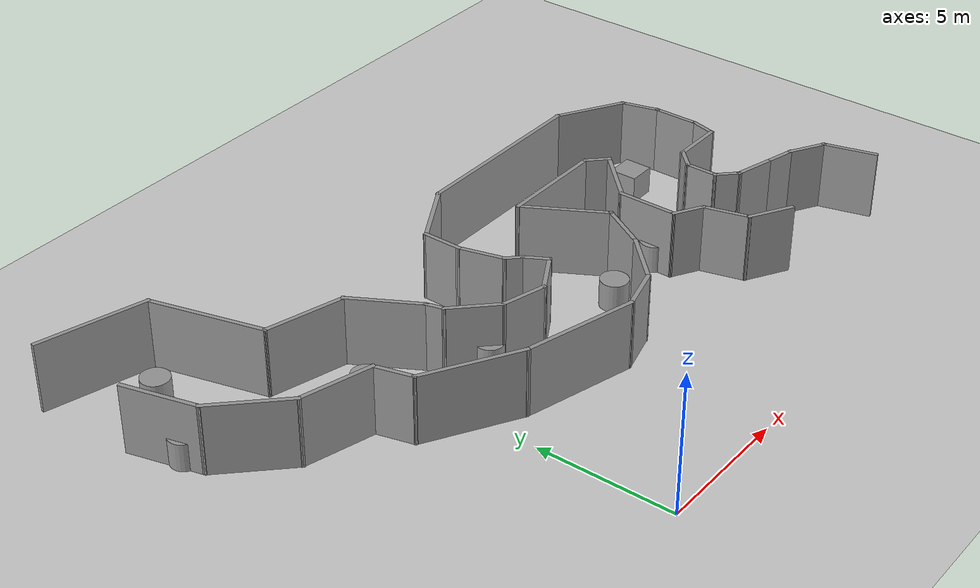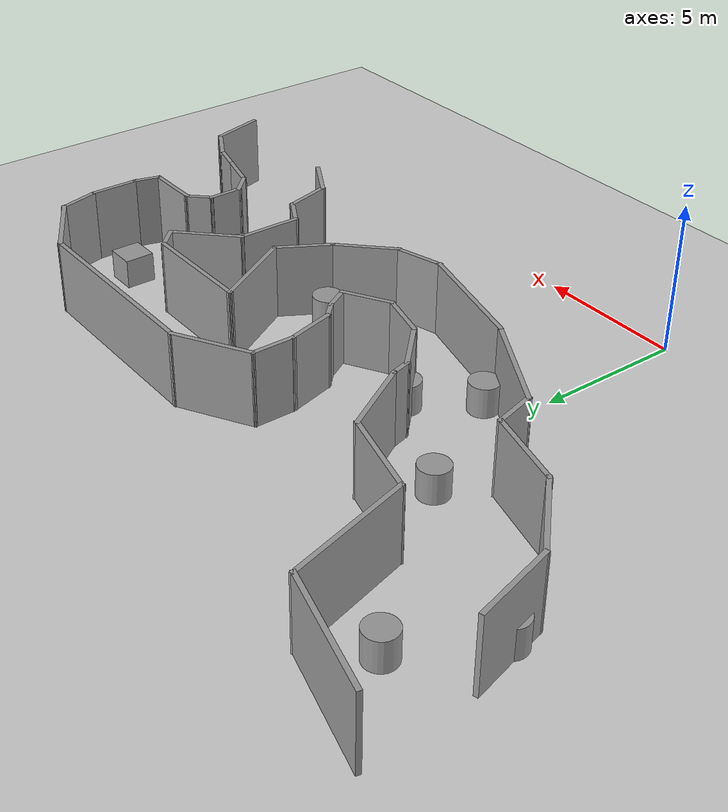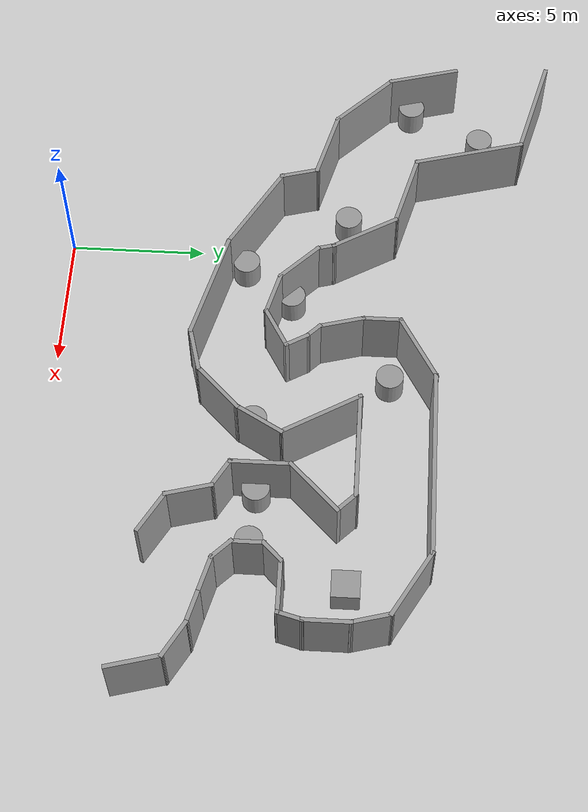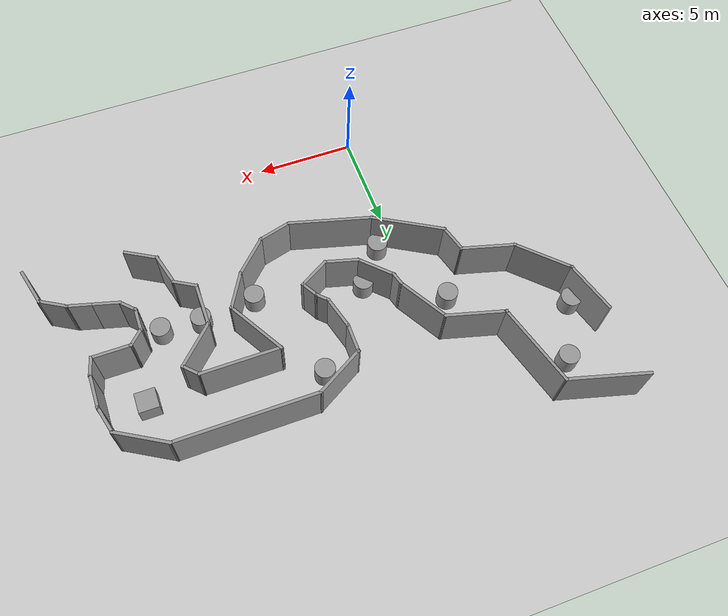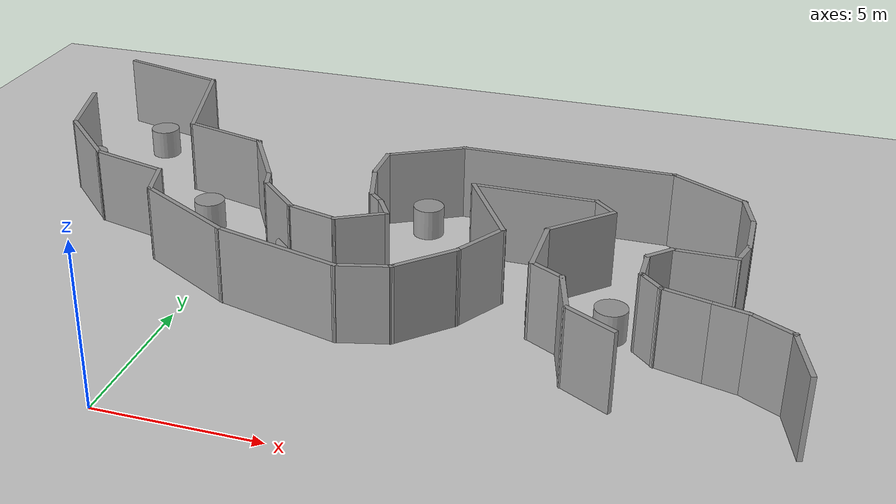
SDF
<sdf version="1.7">
 <world name="default">
  <model name="ground_plane">
   <static>1</static>
   <link name="link">
    <collision name="collision">
     <geometry><plane><normal>0 0 1</normal><size>100 100</size></plane></geometry>
     <surface><friction><ode><mu>100</mu><mu2>50</mu2></ode></friction></surface>
    </collision>
    <visual name="visual">
     <cast_shadows>0</cast_shadows>
     <geometry><plane><normal>0 0 1</normal><size>100 100</size></plane></geometry>
     <material>
      <script><uri>file://media/materials/scripts/gazebo.material</uri><name>Gazebo/Grey</name></script>
     </material>
    </visual>
   </link>
  </model>
  <model name="racetrackgap">
   <pose>0.224585 2.63558 0 0 -0 0</pose>
   <link name="Wall_100">
    <collision name="Wall_100_Collision">
     <geometry><box><size>2.75 0.15 2.5</size></box></geometry>
     <pose>0 0 1.25 0 -0 0</pose>
    </collision>
    <visual name="Wall_100_Visual">
     <pose>0 0 1.25 0 -0 0</pose>
     <geometry><box><size>2.75 0.15 2.5</size></box></geometry>
     <material>
      <script><uri>file://media/materials/scripts/gazebo.material</uri><name>Gazebo/Grey</name></script>
      <ambient>1 1 1 1</ambient>
     </material>
     <meta><layer>0</layer></meta>
    </visual>
    <pose>-3.86239 6.95839 0 0 -0 2.87979</pose>
   </link>
   <link name="Wall_101">
    <collision name="Wall_101_Collision">
     <geometry><box><size>3 0.15 2.5</size></box></geometry>
     <pose>0 0 1.25 0 -0 0</pose>
    </collision>
    <visual name="Wall_101_Visual">
     <pose>0 0 1.25 0 -0 0</pose>
     <geometry><box><size>3 0.15 2.5</size></box></geometry>
     <material>
      <script><uri>file://media/materials/scripts/gazebo.material</uri><name>Gazebo/Grey</name></script>
      <ambient>1 1 1 1</ambient>
     </material>
     <meta><layer>0</layer></meta>
    </visual>
    <pose>-6.12573 8.30248 0 0 -0 2.35619</pose>
   </link>
   <link name="Wall_102">
    <collision name="Wall_102_Collision">
     <geometry><box><size>2.75 0.15 2.5</size></box></geometry>
     <pose>0 0 1.25 0 -0 0</pose>
    </collision>
    <visual name="Wall_102_Visual">
     <pose>0 0 1.25 0 -0 0</pose>
     <geometry><box><size>2.75 0.15 2.5</size></box></geometry>
     <material>
      <script><uri>file://media/materials/scripts/gazebo.material</uri><name>Gazebo/Grey</name></script>
      <ambient>1 1 1 1</ambient>
     </material>
     <meta><layer>0</layer></meta>
    </visual>
    <pose>-7.46982 10.5658 0 0 -0 1.8326</pose>
   </link>
   <link name="Wall_20">
    <collision name="Wall_20_Collision">
     <geometry><box><size>2 0.15 2.5</size></box></geometry>
     <pose>0 0 1.25 0 -0 0</pose>
    </collision>
    <visual name="Wall_20_Visual">
     <pose>0 0 1.25 0 -0 0</pose>
     <geometry><box><size>2 0.15 2.5</size></box></geometry>
     <material>
      <script><uri>file://media/materials/scripts/gazebo.material</uri><name>Gazebo/Grey</name></script>
      <ambient>1 1 1 1</ambient>
     </material>
     <meta><layer>0</layer></meta>
    </visual>
    <pose>17.3909 1.74277 0 0 -0 1.8326</pose>
   </link>
   <link name="Wall_21">
    <collision name="Wall_21_Collision">
     <geometry><box><size>1.5 0.15 2.5</size></box></geometry>
     <pose>0 0 1.25 0 -0 0</pose>
    </collision>
    <visual name="Wall_21_Visual">
     <pose>0 0 1.25 0 -0 0</pose>
     <geometry><box><size>1.5 0.15 2.5</size></box></geometry>
     <material>
      <script><uri>file://media/materials/scripts/gazebo.material</uri><name>Gazebo/Grey</name></script>
      <ambient>1 1 1 1</ambient>
     </material>
     <meta><layer>0</layer></meta>
    </visual>
    <pose>16.5669 2.97375 0 0 -0 2.61799</pose>
   </link>
   <link name="Wall_22">
    <collision name="Wall_22_Collision">
     <geometry><box><size>1.25 0.15 2.5</size></box></geometry>
     <pose>0 0 1.25 0 -0 0</pose>
    </collision>
    <visual name="Wall_22_Visual">
     <pose>0 0 1.25 0 -0 0</pose>
     <geometry><box><size>1.25 0.15 2.5</size></box></geometry>
     <material>
      <script><uri>file://media/materials/scripts/gazebo.material</uri><name>Gazebo/Grey</name></script>
      <ambient>1 1 1 1</ambient>
     </material>
     <meta><layer>0</layer></meta>
    </visual>
    <pose>15.4511 3.4536 0 0 -0 2.87979</pose>
   </link>
   <link name="Wall_23">
    <collision name="Wall_23_Collision">
     <geometry><box><size>1.5 0.15 2.5</size></box></geometry>
     <pose>0 0 1.25 0 -0 0</pose>
    </collision>
    <visual name="Wall_23_Visual">
     <pose>0 0 1.25 0 -0 0</pose>
     <geometry><box><size>1.5 0.15 2.5</size></box></geometry>
     <material>
      <script><uri>file://media/materials/scripts/gazebo.material</uri><name>Gazebo/Grey</name></script>
      <ambient>1 1 1 1</ambient>
     </material>
     <meta><layer>0</layer></meta>
    </visual>
    <pose>14.2678 3.77066 0 0 -0 2.87979</pose>
   </link>
   <link name="Wall_24">
    <collision name="Wall_24_Collision">
     <geometry><box><size>1 0.15 2.5</size></box></geometry>
     <pose>0 0 1.25 0 -0 0</pose>
    </collision>
    <visual name="Wall_24_Visual">
     <pose>0 0 1.25 0 -0 0</pose>
     <geometry><box><size>1 0.15 2.5</size></box></geometry>
     <material>
      <script><uri>file://media/materials/scripts/gazebo.material</uri><name>Gazebo/Grey</name></script>
      <ambient>1 1 1 1</ambient>
     </material>
     <meta><layer>0</layer></meta>
    </visual>
    <pose>13.3153 4.24588 0 0 -0 2.35619</pose>
   </link>
   <link name="Wall_27">
    <collision name="Wall_27_Collision">
     <geometry><box><size>1.25 0.15 2.5</size></box></geometry>
     <pose>0 0 1.25 0 -0 0</pose>
    </collision>
    <visual name="Wall_27_Visual">
     <pose>0 0 1.25 0 -0 0</pose>
     <geometry><box><size>1.25 0.15 2.5</size></box></geometry>
     <material>
      <script><uri>file://media/materials/scripts/gazebo.material</uri><name>Gazebo/Grey</name></script>
      <ambient>1 1 1 1</ambient>
     </material>
     <meta><layer>0</layer></meta>
    </visual>
    <pose>13.0148 5.0964 0 0 -0 1.5708</pose>
   </link>
   <link name="Wall_28">
    <collision name="Wall_28_Collision">
     <geometry><box><size>1 0.15 2.5</size></box></geometry>
     <pose>0 0 1.25 0 -0 0</pose>
    </collision>
    <visual name="Wall_28_Visual">
     <pose>0 0 1.25 0 -0 0</pose>
     <geometry><box><size>1 0.15 2.5</size></box></geometry>
     <material>
      <script><uri>file://media/materials/scripts/gazebo.material</uri><name>Gazebo/Grey</name></script>
      <ambient>1 1 1 1</ambient>
     </material>
     <meta><layer>0</layer></meta>
    </visual>
    <pose>13.3153 5.94692 0 0 -0 0.785398</pose>
   </link>
   <link name="Wall_29">
    <collision name="Wall_29_Collision">
     <geometry><box><size>2 0.15 2.5</size></box></geometry>
     <pose>0 0 1.25 0 -0 0</pose>
    </collision>
    <visual name="Wall_29_Visual">
     <pose>0 0 1.25 0 -0 0</pose>
     <geometry><box><size>2 0.15 2.5</size></box></geometry>
     <material>
      <script><uri>file://media/materials/scripts/gazebo.material</uri><name>Gazebo/Grey</name></script>
      <ambient>1 1 1 1</ambient>
     </material>
     <meta><layer>0</layer></meta>
    </visual>
    <pose>14.5408 6.24744 0 0 -0 0</pose>
   </link>
   <link name="Wall_30">
    <collision name="Wall_30_Collision">
     <geometry><box><size>1 0.15 2.5</size></box></geometry>
     <pose>0 0 1.25 0 -0 0</pose>
    </collision>
    <visual name="Wall_30_Visual">
     <pose>0 0 1.25 0 -0 0</pose>
     <geometry><box><size>1 0.15 2.5</size></box></geometry>
     <material>
      <script><uri>file://media/materials/scripts/gazebo.material</uri><name>Gazebo/Grey</name></script>
      <ambient>1 1 1 1</ambient>
     </material>
     <meta><layer>0</layer></meta>
    </visual>
    <pose>15.5758 6.65796 0 0 -0 1.309</pose>
   </link>
   <link name="Wall_31">
    <collision name="Wall_31_Collision">
     <geometry><box><size>1.75 0.15 2.5</size></box></geometry>
     <pose>0 0 1.25 0 -0 0</pose>
    </collision>
    <visual name="Wall_31_Visual">
     <pose>0 0 1.25 0 -0 0</pose>
     <geometry><box><size>1.75 0.15 2.5</size></box></geometry>
     <material>
      <script><uri>file://media/materials/scripts/gazebo.material</uri><name>Gazebo/Grey</name></script>
      <ambient>1 1 1 1</ambient>
     </material>
     <meta><layer>0</layer></meta>
    </visual>
    <pose>15.6858 7.86848 0 0 -0 1.5708</pose>
   </link>
   <link name="Wall_32">
    <collision name="Wall_32_Collision">
     <geometry><box><size>1.5 0.15 2.5</size></box></geometry>
     <pose>0 0 1.25 0 -0 0</pose>
    </collision>
    <visual name="Wall_32_Visual">
     <pose>0 0 1.25 0 -0 0</pose>
     <geometry><box><size>1.5 0.15 2.5</size></box></geometry>
     <material>
      <script><uri>file://media/materials/scripts/gazebo.material</uri><name>Gazebo/Grey</name></script>
      <ambient>1 1 1 1</ambient>
     </material>
     <meta><layer>0</layer></meta>
    </visual>
    <pose>15.5111 9.32048 0 0 -0 1.8326</pose>
   </link>
   <link name="Wall_33">
    <collision name="Wall_33_Collision">
     <geometry><box><size>2.75 0.15 2.5</size></box></geometry>
     <pose>0 0 1.25 0 -0 0</pose>
    </collision>
    <visual name="Wall_33_Visual">
     <pose>0 0 1.25 0 -0 0</pose>
     <geometry><box><size>2.75 0.15 2.5</size></box></geometry>
     <material>
      <script><uri>file://media/materials/scripts/gazebo.material</uri><name>Gazebo/Grey</name></script>
      <ambient>1 1 1 1</ambient>
     </material>
     <meta><layer>0</layer></meta>
    </visual>
    <pose>14.2106 10.6225 0 0 -0 2.61799</pose>
   </link>
   <link name="Wall_34">
    <collision name="Wall_34_Collision">
     <geometry><box><size>7 0.15 2.5</size></box></geometry>
     <pose>0 0 1.25 0 -0 0</pose>
    </collision>
    <visual name="Wall_34_Visual">
     <pose>0 0 1.25 0 -0 0</pose>
     <geometry><box><size>7 0.15 2.5</size></box></geometry>
     <material>
      <script><uri>file://media/materials/scripts/gazebo.material</uri><name>Gazebo/Grey</name></script>
      <ambient>1 1 1 1</ambient>
     </material>
     <meta><layer>0</layer></meta>
    </visual>
    <pose>9.65973 11.2725 0 0 -0 3.14159</pose>
   </link>
   <link name="Wall_35">
    <collision name="Wall_35_Collision">
     <geometry><box><size>2.75 0.15 2.5</size></box></geometry>
     <pose>0 0 1.25 0 -0 0</pose>
    </collision>
    <visual name="Wall_35_Visual">
     <pose>0 0 1.25 0 -0 0</pose>
     <geometry><box><size>2.75 0.15 2.5</size></box></geometry>
     <material>
      <script><uri>file://media/materials/scripts/gazebo.material</uri><name>Gazebo/Grey</name></script>
      <ambient>1 1 1 1</ambient>
     </material>
     <meta><layer>0</layer></meta>
    </visual>
    <pose>5.10889 10.6225 0 0 -0 -2.61799</pose>
   </link>
   <link name="Wall_36">
    <collision name="Wall_36_Collision">
     <geometry><box><size>1.5 0.15 2.5</size></box></geometry>
     <pose>0 0 1.25 0 -0 0</pose>
    </collision>
    <visual name="Wall_36_Visual">
     <pose>0 0 1.25 0 -0 0</pose>
     <geometry><box><size>1.5 0.15 2.5</size></box></geometry>
     <material>
      <script><uri>file://media/materials/scripts/gazebo.material</uri><name>Gazebo/Grey</name></script>
      <ambient>1 1 1 1</ambient>
     </material>
     <meta><layer>0</layer></meta>
    </visual>
    <pose>3.98306 9.29748 0 0 -0 -1.5708</pose>
   </link>
   <link name="Wall_37">
    <collision name="Wall_37_Collision">
     <geometry><box><size>1.75 0.15 2.5</size></box></geometry>
     <pose>0 0 1.25 0 -0 0</pose>
    </collision>
    <visual name="Wall_37_Visual">
     <pose>0 0 1.25 0 -0 0</pose>
     <geometry><box><size>1.75 0.15 2.5</size></box></geometry>
     <material>
      <script><uri>file://media/materials/scripts/gazebo.material</uri><name>Gazebo/Grey</name></script>
      <ambient>1 1 1 1</ambient>
     </material>
     <meta><layer>0</layer></meta>
    </visual>
    <pose>4.19011 7.84974 0 0 -0 -1.309</pose>
   </link>
   <link name="Wall_38">
    <collision name="Wall_38_Collision">
     <geometry><box><size>0.75 0.15 2.5</size></box></geometry>
     <pose>0 0 1.25 0 -0 0</pose>
    </collision>
    <visual name="Wall_38_Visual">
     <pose>0 0 1.25 0 -0 0</pose>
     <geometry><box><size>0.75 0.15 2.5</size></box></geometry>
     <material>
      <script><uri>file://media/materials/scripts/gazebo.material</uri><name>Gazebo/Grey</name></script>
      <ambient>1 1 1 1</ambient>
     </material>
     <meta><layer>0</layer></meta>
    </visual>
    <pose>4.6093 6.86486 0 0 -0 -0.785398</pose>
   </link>
   <link name="Wall_39">
    <collision name="Wall_39_Collision">
     <geometry><box><size>1 0.15 2.5</size></box></geometry>
     <pose>0 0 1.25 0 -0 0</pose>
    </collision>
    <visual name="Wall_39_Visual">
     <pose>0 0 1.25 0 -0 0</pose>
     <geometry><box><size>1 0.15 2.5</size></box></geometry>
     <material>
      <script><uri>file://media/materials/scripts/gazebo.material</uri><name>Gazebo/Grey</name></script>
      <ambient>1 1 1 1</ambient>
     </material>
     <meta><layer>0</layer></meta>
    </visual>
    <pose>5.03393 6.28467 0 0 -0 -1.0472</pose>
   </link>
   <link name="Wall_40">
    <collision name="Wall_40_Collision">
     <geometry><box><size>1.75 0.15 2.5</size></box></geometry>
     <pose>0 0 1.25 0 -0 0</pose>
    </collision>
    <visual name="Wall_40_Visual">
     <pose>0 0 1.25 0 -0 0</pose>
     <geometry><box><size>1.75 0.15 2.5</size></box></geometry>
     <material>
      <script><uri>file://media/materials/scripts/gazebo.material</uri><name>Gazebo/Grey</name></script>
      <ambient>1 1 1 1</ambient>
     </material>
     <meta><layer>0</layer></meta>
    </visual>
    <pose>4.55361 5.51661 0 0 -0 -2.61799</pose>
   </link>
   <link name="Wall_41">
    <collision name="Wall_41_Collision">
     <geometry><box><size>1.75 0.15 2.5</size></box></geometry>
     <pose>0 0 1.25 0 -0 0</pose>
    </collision>
    <visual name="Wall_41_Visual">
     <pose>0 0 1.25 0 -0 0</pose>
     <geometry><box><size>1.75 0.15 2.5</size></box></geometry>
     <material>
      <script><uri>file://media/materials/scripts/gazebo.material</uri><name>Gazebo/Grey</name></script>
      <ambient>1 1 1 1</ambient>
     </material>
     <meta><layer>0</layer></meta>
    </visual>
    <pose>3.08805 5.32367 0 0 -0 2.87979</pose>
   </link>
   <link name="Wall_42">
    <collision name="Wall_42_Collision">
     <geometry><box><size>2 0.15 2.5</size></box></geometry>
     <pose>0 0 1.25 0 -0 0</pose>
    </collision>
    <visual name="Wall_42_Visual">
     <pose>0 0 1.25 0 -0 0</pose>
     <geometry><box><size>2 0.15 2.5</size></box></geometry>
     <material>
      <script><uri>file://media/materials/scripts/gazebo.material</uri><name>Gazebo/Grey</name></script>
      <ambient>1 1 1 1</ambient>
     </material>
     <meta><layer>0</layer></meta>
    </visual>
    <pose>1.66124 6.18479 0 0 -0 2.35619</pose>
   </link>
   <link name="Wall_43">
    <collision name="Wall_43_Collision">
     <geometry><box><size>0.75 0.15 2.5</size></box></geometry>
     <pose>0 0 1.25 0 -0 0</pose>
    </collision>
    <visual name="Wall_43_Visual">
     <pose>0 0 1.25 0 -0 0</pose>
     <geometry><box><size>0.75 0.15 2.5</size></box></geometry>
     <material>
      <script><uri>file://media/materials/scripts/gazebo.material</uri><name>Gazebo/Grey</name></script>
      <ambient>1 1 1 1</ambient>
     </material>
     <meta><layer>0</layer></meta>
    </visual>
    <pose>0.929519 7.12864 0 0 -0 1.8326</pose>
   </link>
   <link name="Wall_44">
    <collision name="Wall_44_Collision">
     <geometry><box><size>2.75 0.15 2.5</size></box></geometry>
     <pose>0 0 1.25 0 -0 0</pose>
    </collision>
    <visual name="Wall_44_Visual">
     <pose>0 0 1.25 0 -0 0</pose>
     <geometry><box><size>2.75 0.15 2.5</size></box></geometry>
     <material>
      <script><uri>file://media/materials/scripts/gazebo.material</uri><name>Gazebo/Grey</name></script>
      <ambient>1 1 1 1</ambient>
     </material>
     <meta><layer>0</layer></meta>
    </visual>
    <pose>0.201873 8.54426 0 0 -0 2.0944</pose>
   </link>
   <link name="Wall_45">
    <collision name="Wall_45_Collision">
     <geometry><box><size>3 0.15 2.5</size></box></geometry>
     <pose>0 0 1.25 0 -0 0</pose>
    </collision>
    <visual name="Wall_45_Visual">
     <pose>0 0 1.25 0 -0 0</pose>
     <geometry><box><size>3 0.15 2.5</size></box></geometry>
     <material>
      <script><uri>file://media/materials/scripts/gazebo.material</uri><name>Gazebo/Grey</name></script>
      <ambient>1 1 1 1</ambient>
     </material>
     <meta><layer>0</layer></meta>
    </visual>
    <pose>-1.82457 10.0389 0 0 -0 2.87979</pose>
   </link>
   <link name="Wall_46">
    <collision name="Wall_46_Collision">
     <geometry><box><size>4.25 0.15 2.5</size></box></geometry>
     <pose>0 0 1.25 0 -0 0</pose>
    </collision>
    <visual name="Wall_46_Visual">
     <pose>0 0 1.25 0 -0 0</pose>
     <geometry><box><size>4.25 0.15 2.5</size></box></geometry>
     <material>
      <script><uri>file://media/materials/scripts/gazebo.material</uri><name>Gazebo/Grey</name></script>
      <ambient>1 1 1 1</ambient>
     </material>
     <meta><layer>0</layer></meta>
    </visual>
    <pose>-3.73159 12.3879 0 0 -0 1.8326</pose>
   </link>
   <link name="Wall_47">
    <collision name="Wall_47_Collision">
     <geometry><box><size>4 0.15 2.5</size></box></geometry>
     <pose>0 0 1.25 0 -0 0</pose>
    </collision>
    <visual name="Wall_47_Visual">
     <pose>0 0 1.25 0 -0 0</pose>
     <geometry><box><size>4 0.15 2.5</size></box></geometry>
     <material>
      <script><uri>file://media/materials/scripts/gazebo.material</uri><name>Gazebo/Grey</name></script>
      <ambient>1 1 1 1</ambient>
     </material>
     <meta><layer>0</layer></meta>
    </visual>
    <pose>-6.12158 14.8662 0 0 -0 2.87979</pose>
   </link>
   <link name="Wall_86">
    <collision name="Wall_86_Collision">
     <geometry><box><size>1.75 0.15 2.5</size></box></geometry>
     <pose>0 0 1.25 0 -0 0</pose>
    </collision>
    <visual name="Wall_86_Visual">
     <pose>0 0 1.25 0 -0 0</pose>
     <geometry><box><size>1.75 0.15 2.5</size></box></geometry>
     <material>
      <script><uri>file://media/materials/scripts/gazebo.material</uri><name>Gazebo/Grey</name></script>
      <ambient>1 1 1 1</ambient>
     </material>
     <meta><layer>0</layer></meta>
    </visual>
    <pose>12.075 1.7844 0 0 -0 2.61799</pose>
   </link>
   <link name="Wall_87">
    <collision name="Wall_87_Collision">
     <geometry><box><size>1.75 0.15 2.5</size></box></geometry>
     <pose>0 0 1.25 0 -0 0</pose>
    </collision>
    <visual name="Wall_87_Visual">
     <pose>0 0 1.25 0 -0 0</pose>
     <geometry><box><size>1.75 0.15 2.5</size></box></geometry>
     <material>
      <script><uri>file://media/materials/scripts/gazebo.material</uri><name>Gazebo/Grey</name></script>
      <ambient>1 1 1 1</ambient>
     </material>
     <meta><layer>0</layer></meta>
    </visual>
    <pose>11.1751 2.95714 0 0 -0 1.8326</pose>
   </link>
   <link name="Wall_88">
    <collision name="Wall_88_Collision">
     <geometry><box><size>1.25 0.15 2.5</size></box></geometry>
     <pose>0 0 1.25 0 -0 0</pose>
    </collision>
    <visual name="Wall_88_Visual">
     <pose>0 0 1.25 0 -0 0</pose>
     <geometry><box><size>1.25 0.15 2.5</size></box></geometry>
     <material>
      <script><uri>file://media/materials/scripts/gazebo.material</uri><name>Gazebo/Grey</name></script>
      <ambient>1 1 1 1</ambient>
     </material>
     <meta><layer>0</layer></meta>
    </visual>
    <pose>10.4918 4.00488 0 0 -0 2.61799</pose>
   </link>
   <link name="Wall_89">
    <collision name="Wall_89_Collision">
     <geometry><box><size>2.25 0.15 2.5</size></box></geometry>
     <pose>0 0 1.25 0 -0 0</pose>
    </collision>
    <visual name="Wall_89_Visual">
     <pose>0 0 1.25 0 -0 0</pose>
     <geometry><box><size>2.25 0.15 2.5</size></box></geometry>
     <material>
      <script><uri>file://media/materials/scripts/gazebo.material</uri><name>Gazebo/Grey</name></script>
      <ambient>1 1 1 1</ambient>
     </material>
     <meta><layer>0</layer></meta>
    </visual>
    <pose>10.0154 5.32988 0 0 -0 1.5708</pose>
   </link>
   <link name="Wall_90">
    <collision name="Wall_90_Collision">
     <geometry><box><size>2.5 0.15 2.5</size></box></geometry>
     <pose>0 0 1.25 0 -0 0</pose>
    </collision>
    <visual name="Wall_90_Visual">
     <pose>0 0 1.25 0 -0 0</pose>
     <geometry><box><size>2.5 0.15 2.5</size></box></geometry>
     <material>
      <script><uri>file://media/materials/scripts/gazebo.material</uri><name>Gazebo/Grey</name></script>
      <ambient>1 1 1 1</ambient>
     </material>
     <meta><layer>0</layer></meta>
    </visual>
    <pose>10.8463 7.21073 0 0 -0 0.785398</pose>
   </link>
   <link name="Wall_91">
    <collision name="Wall_91_Collision">
     <geometry><box><size>1 0.15 2.5</size></box></geometry>
     <pose>0 0 1.25 0 -0 0</pose>
    </collision>
    <visual name="Wall_91_Visual">
     <pose>0 0 1.25 0 -0 0</pose>
     <geometry><box><size>1 0.15 2.5</size></box></geometry>
     <material>
      <script><uri>file://media/materials/scripts/gazebo.material</uri><name>Gazebo/Grey</name></script>
      <ambient>1 1 1 1</ambient>
     </material>
     <meta><layer>0</layer></meta>
    </visual>
    <pose>11.3766 8.34211 0 0 -0 2.35619</pose>
   </link>
   <link name="Wall_92">
    <collision name="Wall_92_Collision">
     <geometry><box><size>4 0.15 2.5</size></box></geometry>
     <pose>0 0 1.25 0 -0 0</pose>
    </collision>
    <visual name="Wall_92_Visual">
     <pose>0 0 1.25 0 -0 0</pose>
     <geometry><box><size>4 0.15 2.5</size></box></geometry>
     <material>
      <script><uri>file://media/materials/scripts/gazebo.material</uri><name>Gazebo/Grey</name></script>
      <ambient>1 1 1 1</ambient>
     </material>
     <meta><layer>0</layer></meta>
    </visual>
    <pose>9.15111 8.64263 0 0 -0 3.14159</pose>
   </link>
   <link name="Wall_93">
    <collision name="Wall_93_Collision">
     <geometry><box><size>3.25 0.15 2.5</size></box></geometry>
     <pose>0 0 1.25 0 -0 0</pose>
    </collision>
    <visual name="Wall_93_Visual">
     <pose>0 0 1.25 0 -0 0</pose>
     <geometry><box><size>3.25 0.15 2.5</size></box></geometry>
     <material>
      <script><uri>file://media/materials/scripts/gazebo.material</uri><name>Gazebo/Grey</name></script>
      <ambient>1 1 1 1</ambient>
     </material>
     <meta><layer>0</layer></meta>
    </visual>
    <pose>8.00111 7.30029 0 0 -0 -1.0472</pose>
   </link>
   <link name="Wall_94">
    <collision name="Wall_94_Collision">
     <geometry><box><size>2 0.15 2.5</size></box></geometry>
     <pose>0 0 1.25 0 -0 0</pose>
    </collision>
    <visual name="Wall_94_Visual">
     <pose>0 0 1.25 0 -0 0</pose>
     <geometry><box><size>2 0.15 2.5</size></box></geometry>
     <material>
      <script><uri>file://media/materials/scripts/gazebo.material</uri><name>Gazebo/Grey</name></script>
      <ambient>1 1 1 1</ambient>
     </material>
     <meta><layer>0</layer></meta>
    </visual>
    <pose>8.31361 5.15687 0 0 -0 -2.0944</pose>
   </link>
   <link name="Wall_95">
    <collision name="Wall_95_Collision">
     <geometry><box><size>2.25 0.15 2.5</size></box></geometry>
     <pose>0 0 1.25 0 -0 0</pose>
    </collision>
    <visual name="Wall_95_Visual">
     <pose>0 0 1.25 0 -0 0</pose>
     <geometry><box><size>2.25 0.15 2.5</size></box></geometry>
     <material>
      <script><uri>file://media/materials/scripts/gazebo.material</uri><name>Gazebo/Grey</name></script>
      <ambient>1 1 1 1</ambient>
     </material>
     <meta><layer>0</layer></meta>
    </visual>
    <pose>7.10865 3.61334 0 0 -0 -2.35619</pose>
   </link>
   <link name="Wall_96">
    <collision name="Wall_96_Collision">
     <geometry><box><size>1.75 0.15 2.5</size></box></geometry>
     <pose>0 0 1.25 0 -0 0</pose>
    </collision>
    <visual name="Wall_96_Visual">
     <pose>0 0 1.25 0 -0 0</pose>
     <geometry><box><size>1.75 0.15 2.5</size></box></geometry>
     <material>
      <script><uri>file://media/materials/scripts/gazebo.material</uri><name>Gazebo/Grey</name></script>
      <ambient>1 1 1 1</ambient>
     </material>
     <meta><layer>0</layer></meta>
    </visual>
    <pose>5.59344 2.66382 0 0 -0 -2.87979</pose>
   </link>
   <link name="Wall_97">
    <collision name="Wall_97_Collision">
     <geometry><box><size>4.25 0.15 2.5</size></box></geometry>
     <pose>0 0 1.25 0 -0 0</pose>
    </collision>
    <visual name="Wall_97_Visual">
     <pose>0 0 1.25 0 -0 0</pose>
     <geometry><box><size>4.25 0.15 2.5</size></box></geometry>
     <material>
      <script><uri>file://media/materials/scripts/gazebo.material</uri><name>Gazebo/Grey</name></script>
      <ambient>1 1 1 1</ambient>
     </material>
     <meta><layer>0</layer></meta>
    </visual>
    <pose>2.84055 2.98734 0 0 -0 2.87979</pose>
   </link>
   <link name="Wall_98">
    <collision name="Wall_98_Collision">
     <geometry><box><size>3.75 0.15 2.5</size></box></geometry>
     <pose>0 0 1.25 0 -0 0</pose>
    </collision>
    <visual name="Wall_98_Visual">
     <pose>0 0 1.25 0 -0 0</pose>
     <geometry><box><size>3.75 0.15 2.5</size></box></geometry>
     <material>
      <script><uri>file://media/materials/scripts/gazebo.material</uri><name>Gazebo/Grey</name></script>
      <ambient>1 1 1 1</ambient>
     </material>
     <meta><layer>0</layer></meta>
    </visual>
    <pose>-0.698439 4.41792 0 0 -0 2.61799</pose>
   </link>
   <link name="Wall_99">
    <collision name="Wall_99_Collision">
     <geometry><box><size>1.5 0.15 2.5</size></box></geometry>
     <pose>0 0 1.25 0 -0 0</pose>
    </collision>
    <visual name="Wall_99_Visual">
     <pose>0 0 1.25 0 -0 0</pose>
     <geometry><box><size>1.5 0.15 2.5</size></box></geometry>
     <material>
      <script><uri>file://media/materials/scripts/gazebo.material</uri><name>Gazebo/Grey</name></script>
      <ambient>1 1 1 1</ambient>
     </material>
     <meta><layer>0</layer></meta>
    </visual>
    <pose>-2.43199 5.96992 0 0 -0 1.8326</pose>
   </link>
   <static>1</static>
  </model>
  <model name="objetracetrack">
   <link name="link_10">
    <inertial>
     <mass>1</mass>
     <inertia><ixx>0.145833</ixx><ixy>0</ixy><ixz>0</ixz><iyy>0.145833</iyy><iyz>0</iyz><izz>0.125</izz></inertia>
    </inertial>
    <pose>14.1744 5.54812 0 0 -0 0</pose>
    <visual name="visual">
     <geometry><cylinder><radius>0.5</radius><length>1</length></cylinder></geometry>
     <material>
      <lighting>1</lighting>
      <script><uri>file://media/materials/scripts/gazebo.material</uri><name>Gazebo/Grey</name></script>
      <shader type="pixel"/>
     </material>
    </visual>
    <collision name="collision">
     <geometry><cylinder><radius>0.5</radius><length>1</length></cylinder></geometry>
     <surface>
      <friction>
       <ode><mu>1</mu><mu2>1</mu2><fdir1>0 0 0</fdir1><slip1>0</slip1><slip2>0</slip2></ode>
       <torsional>
        <coefficient>1</coefficient>
        <patch_radius>0</patch_radius>
        <surface_radius>0</surface_radius>
        <use_patch_radius>1</use_patch_radius>
        <ode><slip>0</slip></ode>
       </torsional>
      </friction>
      <bounce><restitution_coefficient>0</restitution_coefficient><threshold>1e+06</threshold></bounce>
      <contact>
       <collide_without_contact>0</collide_without_contact>
       <collide_without_contact_bitmask>1</collide_without_contact_bitmask>
       <collide_bitmask>1</collide_bitmask>
       <ode>
        <soft_cfm>0</soft_cfm>
        <soft_erp>0.2</soft_erp>
        <kp>1e+13</kp>
        <kd>1</kd>
        <max_vel>0.01</max_vel>
        <min_depth>0</min_depth>
       </ode>
       <bullet>
        <split_impulse>1</split_impulse>
        <split_impulse_penetration_threshold>-0.01</split_impulse_penetration_threshold>
        <soft_cfm>0</soft_cfm>
        <soft_erp>0.2</soft_erp>
        <kp>1e+13</kp>
        <kd>1</kd>
       </bullet>
      </contact>
     </surface>
    </collision>
   </link>
   <link name="link_11">
    <inertial>
     <mass>1</mass>
     <inertia>
      <ixx>0.166667</ixx>
      <ixy>0</ixy>
      <ixz>0</ixz>
      <iyy>0.166667</iyy>
      <iyz>0</iyz>
      <izz>0.166667</izz>
     </inertia>
    </inertial>
    <pose>15.6652 8.94561 0 0 -0 0</pose>
    <visual name="visual">
     <geometry><box><size>1 1 1</size></box></geometry>
     <material>
      <lighting>1</lighting>
      <script><uri>file://media/materials/scripts/gazebo.material</uri><name>Gazebo/Grey</name></script>
      <shader type="pixel"/>
     </material>
    </visual>
    <collision name="collision">
     <geometry><box><size>1 1 1</size></box></geometry>
     <surface>
      <friction>
       <ode><mu>1</mu><mu2>1</mu2><fdir1>0 0 0</fdir1><slip1>0</slip1><slip2>0</slip2></ode>
       <torsional>
        <coefficient>1</coefficient>
        <patch_radius>0</patch_radius>
        <surface_radius>0</surface_radius>
        <use_patch_radius>1</use_patch_radius>
        <ode><slip>0</slip></ode>
       </torsional>
      </friction>
      <bounce><restitution_coefficient>0</restitution_coefficient><threshold>1e+06</threshold></bounce>
      <contact>
       <collide_without_contact>0</collide_without_contact>
       <collide_without_contact_bitmask>1</collide_without_contact_bitmask>
       <collide_bitmask>1</collide_bitmask>
       <ode>
        <soft_cfm>0</soft_cfm>
        <soft_erp>0.2</soft_erp>
        <kp>1e+13</kp>
        <kd>1</kd>
        <max_vel>0.01</max_vel>
        <min_depth>0</min_depth>
       </ode>
       <bullet>
        <split_impulse>1</split_impulse>
        <split_impulse_penetration_threshold>-0.01</split_impulse_penetration_threshold>
        <soft_cfm>0</soft_cfm>
        <soft_erp>0.2</soft_erp>
        <kp>1e+13</kp>
        <kd>1</kd>
       </bullet>
      </contact>
     </surface>
    </collision>
   </link>
   <link name="link_12">
    <inertial>
     <mass>1</mass>
     <inertia><ixx>0.145833</ixx><ixy>0</ixy><ixz>0</ixz><iyy>0.145833</iyy><iyz>0</iyz><izz>0.125</izz></inertia>
    </inertial>
    <pose>7.44329 10.1909 0 0 -0 0</pose>
    <visual name="visual">
     <geometry><cylinder><radius>0.5</radius><length>1</length></cylinder></geometry>
     <material>
      <lighting>1</lighting>
      <script><uri>file://media/materials/scripts/gazebo.material</uri><name>Gazebo/Grey</name></script>
      <shader type="pixel"/>
     </material>
    </visual>
    <collision name="collision">
     <geometry><cylinder><radius>0.5</radius><length>1</length></cylinder></geometry>
     <surface>
      <friction>
       <ode><mu>1</mu><mu2>1</mu2><fdir1>0 0 0</fdir1><slip1>0</slip1><slip2>0</slip2></ode>
       <torsional>
        <coefficient>1</coefficient>
        <patch_radius>0</patch_radius>
        <surface_radius>0</surface_radius>
        <use_patch_radius>1</use_patch_radius>
        <ode><slip>0</slip></ode>
       </torsional>
      </friction>
      <bounce><restitution_coefficient>0</restitution_coefficient><threshold>1e+06</threshold></bounce>
      <contact>
       <collide_without_contact>0</collide_without_contact>
       <collide_without_contact_bitmask>1</collide_without_contact_bitmask>
       <collide_bitmask>1</collide_bitmask>
       <ode>
        <soft_cfm>0</soft_cfm>
        <soft_erp>0.2</soft_erp>
        <kp>1e+13</kp>
        <kd>1</kd>
        <max_vel>0.01</max_vel>
        <min_depth>0</min_depth>
       </ode>
       <bullet>
        <split_impulse>1</split_impulse>
        <split_impulse_penetration_threshold>-0.01</split_impulse_penetration_threshold>
        <soft_cfm>0</soft_cfm>
        <soft_erp>0.2</soft_erp>
        <kp>1e+13</kp>
        <kd>1</kd>
       </bullet>
      </contact>
     </surface>
    </collision>
   </link>
   <link name="link_13">
    <inertial>
     <mass>1</mass>
     <inertia><ixx>0.145833</ixx><ixy>0</ixy><ixz>0</ixz><iyy>0.145833</iyy><iyz>0</iyz><izz>0.125</izz></inertia>
    </inertial>
    <pose>9.41915 5.35781 0 0 -0 0</pose>
    <visual name="visual">
     <geometry><cylinder><radius>0.5</radius><length>1</length></cylinder></geometry>
     <material>
      <lighting>1</lighting>
      <script><uri>file://media/materials/scripts/gazebo.material</uri><name>Gazebo/Grey</name></script>
      <shader type="pixel"/>
     </material>
    </visual>
    <collision name="collision">
     <geometry><cylinder><radius>0.5</radius><length>1</length></cylinder></geometry>
     <surface>
      <friction>
       <ode><mu>1</mu><mu2>1</mu2><fdir1>0 0 0</fdir1><slip1>0</slip1><slip2>0</slip2></ode>
       <torsional>
        <coefficient>1</coefficient>
        <patch_radius>0</patch_radius>
        <surface_radius>0</surface_radius>
        <use_patch_radius>1</use_patch_radius>
        <ode><slip>0</slip></ode>
       </torsional>
      </friction>
      <bounce><restitution_coefficient>0</restitution_coefficient><threshold>1e+06</threshold></bounce>
      <contact>
       <collide_without_contact>0</collide_without_contact>
       <collide_without_contact_bitmask>1</collide_without_contact_bitmask>
       <collide_bitmask>1</collide_bitmask>
       <ode>
        <soft_cfm>0</soft_cfm>
        <soft_erp>0.2</soft_erp>
        <kp>1e+13</kp>
        <kd>1</kd>
        <max_vel>0.01</max_vel>
        <min_depth>0</min_depth>
       </ode>
       <bullet>
        <split_impulse>1</split_impulse>
        <split_impulse_penetration_threshold>-0.01</split_impulse_penetration_threshold>
        <soft_cfm>0</soft_cfm>
        <soft_erp>0.2</soft_erp>
        <kp>1e+13</kp>
        <kd>1</kd>
       </bullet>
      </contact>
     </surface>
    </collision>
   </link>
   <link name="link_14">
    <inertial>
     <mass>1</mass>
     <inertia><ixx>0.145833</ixx><ixy>0</ixy><ixz>0</ixz><iyy>0.145833</iyy><iyz>0</iyz><izz>0.125</izz></inertia>
    </inertial>
    <pose>4.1131 6.43948 0 0 -0 0</pose>
    <visual name="visual">
     <geometry><cylinder><radius>0.5</radius><length>1</length></cylinder></geometry>
     <material>
      <lighting>1</lighting>
      <script><uri>file://media/materials/scripts/gazebo.material</uri><name>Gazebo/Grey</name></script>
      <shader type="pixel"/>
     </material>
    </visual>
    <collision name="collision">
     <geometry><cylinder><radius>0.5</radius><length>1</length></cylinder></geometry>
     <surface>
      <friction>
       <ode><mu>1</mu><mu2>1</mu2><fdir1>0 0 0</fdir1><slip1>0</slip1><slip2>0</slip2></ode>
       <torsional>
        <coefficient>1</coefficient>
        <patch_radius>0</patch_radius>
        <surface_radius>0</surface_radius>
        <use_patch_radius>1</use_patch_radius>
        <ode><slip>0</slip></ode>
       </torsional>
      </friction>
      <bounce><restitution_coefficient>0</restitution_coefficient><threshold>1e+06</threshold></bounce>
      <contact>
       <collide_without_contact>0</collide_without_contact>
       <collide_without_contact_bitmask>1</collide_without_contact_bitmask>
       <collide_bitmask>1</collide_bitmask>
       <ode>
        <soft_cfm>0</soft_cfm>
        <soft_erp>0.2</soft_erp>
        <kp>1e+13</kp>
        <kd>1</kd>
        <max_vel>0.01</max_vel>
        <min_depth>0</min_depth>
       </ode>
       <bullet>
        <split_impulse>1</split_impulse>
        <split_impulse_penetration_threshold>-0.01</split_impulse_penetration_threshold>
        <soft_cfm>0</soft_cfm>
        <soft_erp>0.2</soft_erp>
        <kp>1e+13</kp>
        <kd>1</kd>
       </bullet>
      </contact>
     </surface>
    </collision>
   </link>
   <link name="link_15">
    <inertial>
     <mass>1</mass>
     <inertia><ixx>0.145833</ixx><ixy>0</ixy><ixz>0</ixz><iyy>0.145833</iyy><iyz>0</iyz><izz>0.125</izz></inertia>
    </inertial>
    <pose>2.67704 4.64369 0 0 -0 0</pose>
    <visual name="visual">
     <geometry><cylinder><radius>0.5</radius><length>1</length></cylinder></geometry>
     <material>
      <lighting>1</lighting>
      <script><uri>file://media/materials/scripts/gazebo.material</uri><name>Gazebo/Grey</name></script>
      <shader type="pixel"/>
     </material>
    </visual>
    <collision name="collision">
     <geometry><cylinder><radius>0.5</radius><length>1</length></cylinder></geometry>
     <surface>
      <friction>
       <ode><mu>1</mu><mu2>1</mu2><fdir1>0 0 0</fdir1><slip1>0</slip1><slip2>0</slip2></ode>
       <torsional>
        <coefficient>1</coefficient>
        <patch_radius>0</patch_radius>
        <surface_radius>0</surface_radius>
        <use_patch_radius>1</use_patch_radius>
        <ode><slip>0</slip></ode>
       </torsional>
      </friction>
      <bounce><restitution_coefficient>0</restitution_coefficient><threshold>1e+06</threshold></bounce>
      <contact>
       <collide_without_contact>0</collide_without_contact>
       <collide_without_contact_bitmask>1</collide_without_contact_bitmask>
       <collide_bitmask>1</collide_bitmask>
       <ode>
        <soft_cfm>0</soft_cfm>
        <soft_erp>0.2</soft_erp>
        <kp>1e+13</kp>
        <kd>1</kd>
        <max_vel>0.01</max_vel>
        <min_depth>0</min_depth>
       </ode>
       <bullet>
        <split_impulse>1</split_impulse>
        <split_impulse_penetration_threshold>-0.01</split_impulse_penetration_threshold>
        <soft_cfm>0</soft_cfm>
        <soft_erp>0.2</soft_erp>
        <kp>1e+13</kp>
        <kd>1</kd>
       </bullet>
      </contact>
     </surface>
    </collision>
   </link>
   <link name="link_16">
    <inertial>
     <mass>1</mass>
     <inertia><ixx>0.145833</ixx><ixy>0</ixy><ixz>0</ixz><iyy>0.145833</iyy><iyz>0</iyz><izz>0.125</izz></inertia>
    </inertial>
    <pose>0.43334 8.40793 0 0 -0 0</pose>
    <visual name="visual">
     <geometry><cylinder><radius>0.5</radius><length>1</length></cylinder></geometry>
     <material>
      <lighting>1</lighting>
      <script><uri>file://media/materials/scripts/gazebo.material</uri><name>Gazebo/Grey</name></script>
      <shader type="pixel"/>
     </material>
    </visual>
    <collision name="collision">
     <geometry><cylinder><radius>0.5</radius><length>1</length></cylinder></geometry>
     <surface>
      <friction>
       <ode><mu>1</mu><mu2>1</mu2><fdir1>0 0 0</fdir1><slip1>0</slip1><slip2>0</slip2></ode>
       <torsional>
        <coefficient>1</coefficient>
        <patch_radius>0</patch_radius>
        <surface_radius>0</surface_radius>
        <use_patch_radius>1</use_patch_radius>
        <ode><slip>0</slip></ode>
       </torsional>
      </friction>
      <bounce><restitution_coefficient>0</restitution_coefficient><threshold>1e+06</threshold></bounce>
      <contact>
       <collide_without_contact>0</collide_without_contact>
       <collide_without_contact_bitmask>1</collide_without_contact_bitmask>
       <collide_bitmask>1</collide_bitmask>
       <ode>
        <soft_cfm>0</soft_cfm>
        <soft_erp>0.2</soft_erp>
        <kp>1e+13</kp>
        <kd>1</kd>
        <max_vel>0.01</max_vel>
        <min_depth>0</min_depth>
       </ode>
       <bullet>
        <split_impulse>1</split_impulse>
        <split_impulse_penetration_threshold>-0.01</split_impulse_penetration_threshold>
        <soft_cfm>0</soft_cfm>
        <soft_erp>0.2</soft_erp>
        <kp>1e+13</kp>
        <kd>1</kd>
       </bullet>
      </contact>
     </surface>
    </collision>
   </link>
   <link name="link_17">
    <inertial>
     <mass>1</mass>
     <inertia><ixx>0.145833</ixx><ixy>0</ixy><ixz>0</ixz><iyy>0.145833</iyy><iyz>0</iyz><izz>0.125</izz></inertia>
    </inertial>
    <pose>-5.12652 10.6879 0 0 -0 0</pose>
    <visual name="visual">
     <geometry><cylinder><radius>0.5</radius><length>1</length></cylinder></geometry>
     <material>
      <lighting>1</lighting>
      <script><uri>file://media/materials/scripts/gazebo.material</uri><name>Gazebo/Grey</name></script>
      <shader type="pixel"/>
     </material>
    </visual>
    <collision name="collision">
     <geometry><cylinder><radius>0.5</radius><length>1</length></cylinder></geometry>
     <surface>
      <friction>
       <ode><mu>1</mu><mu2>1</mu2><fdir1>0 0 0</fdir1><slip1>0</slip1><slip2>0</slip2></ode>
       <torsional>
        <coefficient>1</coefficient>
        <patch_radius>0</patch_radius>
        <surface_radius>0</surface_radius>
        <use_patch_radius>1</use_patch_radius>
        <ode><slip>0</slip></ode>
       </torsional>
      </friction>
      <bounce><restitution_coefficient>0</restitution_coefficient><threshold>1e+06</threshold></bounce>
      <contact>
       <collide_without_contact>0</collide_without_contact>
       <collide_without_contact_bitmask>1</collide_without_contact_bitmask>
       <collide_bitmask>1</collide_bitmask>
       <ode>
        <soft_cfm>0</soft_cfm>
        <soft_erp>0.2</soft_erp>
        <kp>1e+13</kp>
        <kd>1</kd>
        <max_vel>0.01</max_vel>
        <min_depth>0</min_depth>
       </ode>
       <bullet>
        <split_impulse>1</split_impulse>
        <split_impulse_penetration_threshold>-0.01</split_impulse_penetration_threshold>
        <soft_cfm>0</soft_cfm>
        <soft_erp>0.2</soft_erp>
        <kp>1e+13</kp>
        <kd>1</kd>
       </bullet>
      </contact>
     </surface>
    </collision>
   </link>
   <link name="link_18">
    <inertial>
     <mass>1</mass>
     <inertia><ixx>0.145833</ixx><ixy>0</ixy><ixz>0</ixz><iyy>0.145833</iyy><iyz>0</iyz><izz>0.125</izz></inertia>
    </inertial>
    <pose>-3.63413 13.3905 0 0 -0 0</pose>
    <visual name="visual">
     <geometry><cylinder><radius>0.5</radius><length>1</length></cylinder></geometry>
     <material>
      <lighting>1</lighting>
      <script><uri>file://media/materials/scripts/gazebo.material</uri><name>Gazebo/Grey</name></script>
      <shader type="pixel"/>
     </material>
    </visual>
    <collision name="collision">
     <geometry><cylinder><radius>0.5</radius><length>1</length></cylinder></geometry>
     <surface>
      <friction>
       <ode><mu>1</mu><mu2>1</mu2><fdir1>0 0 0</fdir1><slip1>0</slip1><slip2>0</slip2></ode>
       <torsional>
        <coefficient>1</coefficient>
        <patch_radius>0</patch_radius>
        <surface_radius>0</surface_radius>
        <use_patch_radius>1</use_patch_radius>
        <ode><slip>0</slip></ode>
       </torsional>
      </friction>
      <bounce><restitution_coefficient>0</restitution_coefficient><threshold>1e+06</threshold></bounce>
      <contact>
       <collide_without_contact>0</collide_without_contact>
       <collide_without_contact_bitmask>1</collide_without_contact_bitmask>
       <collide_bitmask>1</collide_bitmask>
       <ode>
        <soft_cfm>0</soft_cfm>
        <soft_erp>0.2</soft_erp>
        <kp>1e+13</kp>
        <kd>1</kd>
        <max_vel>0.01</max_vel>
        <min_depth>0</min_depth>
       </ode>
       <bullet>
        <split_impulse>1</split_impulse>
        <split_impulse_penetration_threshold>-0.01</split_impulse_penetration_threshold>
        <soft_cfm>0</soft_cfm>
        <soft_erp>0.2</soft_erp>
        <kp>1e+13</kp>
        <kd>1</kd>
       </bullet>
      </contact>
     </surface>
    </collision>
   </link>
   <link name="link_9">
    <inertial>
     <mass>1</mass>
     <inertia><ixx>0.145833</ixx><ixy>0</ixy><ixz>0</ixz><iyy>0.145833</iyy><iyz>0</iyz><izz>0.125</izz></inertia>
    </inertial>
    <pose>12.2014 5.65194 0 0 -0 0</pose>
    <visual name="visual">
     <geometry><cylinder><radius>0.5</radius><length>1</length></cylinder></geometry>
     <material>
      <lighting>1</lighting>
      <script><uri>file://media/materials/scripts/gazebo.material</uri><name>Gazebo/Grey</name></script>
      <shader type="pixel"/>
     </material>
    </visual>
    <collision name="collision">
     <geometry><cylinder><radius>0.5</radius><length>1</length></cylinder></geometry>
     <surface>
      <friction>
       <ode><mu>1</mu><mu2>1</mu2><fdir1>0 0 0</fdir1><slip1>0</slip1><slip2>0</slip2></ode>
       <torsional>
        <coefficient>1</coefficient>
        <patch_radius>0</patch_radius>
        <surface_radius>0</surface_radius>
        <use_patch_radius>1</use_patch_radius>
        <ode><slip>0</slip></ode>
       </torsional>
      </friction>
      <bounce><restitution_coefficient>0</restitution_coefficient><threshold>1e+06</threshold></bounce>
      <contact>
       <collide_without_contact>0</collide_without_contact>
       <collide_without_contact_bitmask>1</collide_without_contact_bitmask>
       <collide_bitmask>1</collide_bitmask>
       <ode>
        <soft_cfm>0</soft_cfm>
        <soft_erp>0.2</soft_erp>
        <kp>1e+13</kp>
        <kd>1</kd>
        <max_vel>0.01</max_vel>
        <min_depth>0</min_depth>
       </ode>
       <bullet>
        <split_impulse>1</split_impulse>
        <split_impulse_penetration_threshold>-0.01</split_impulse_penetration_threshold>
        <soft_cfm>0</soft_cfm>
        <soft_erp>0.2</soft_erp>
        <kp>1e+13</kp>
        <kd>1</kd>
       </bullet>
      </contact>
     </surface>
    </collision>
   </link>
   <static>0</static>
   <pose>-1.73745 2.12477 0.5 0 -0 0</pose>
  </model>
 </world>
</sdf>
